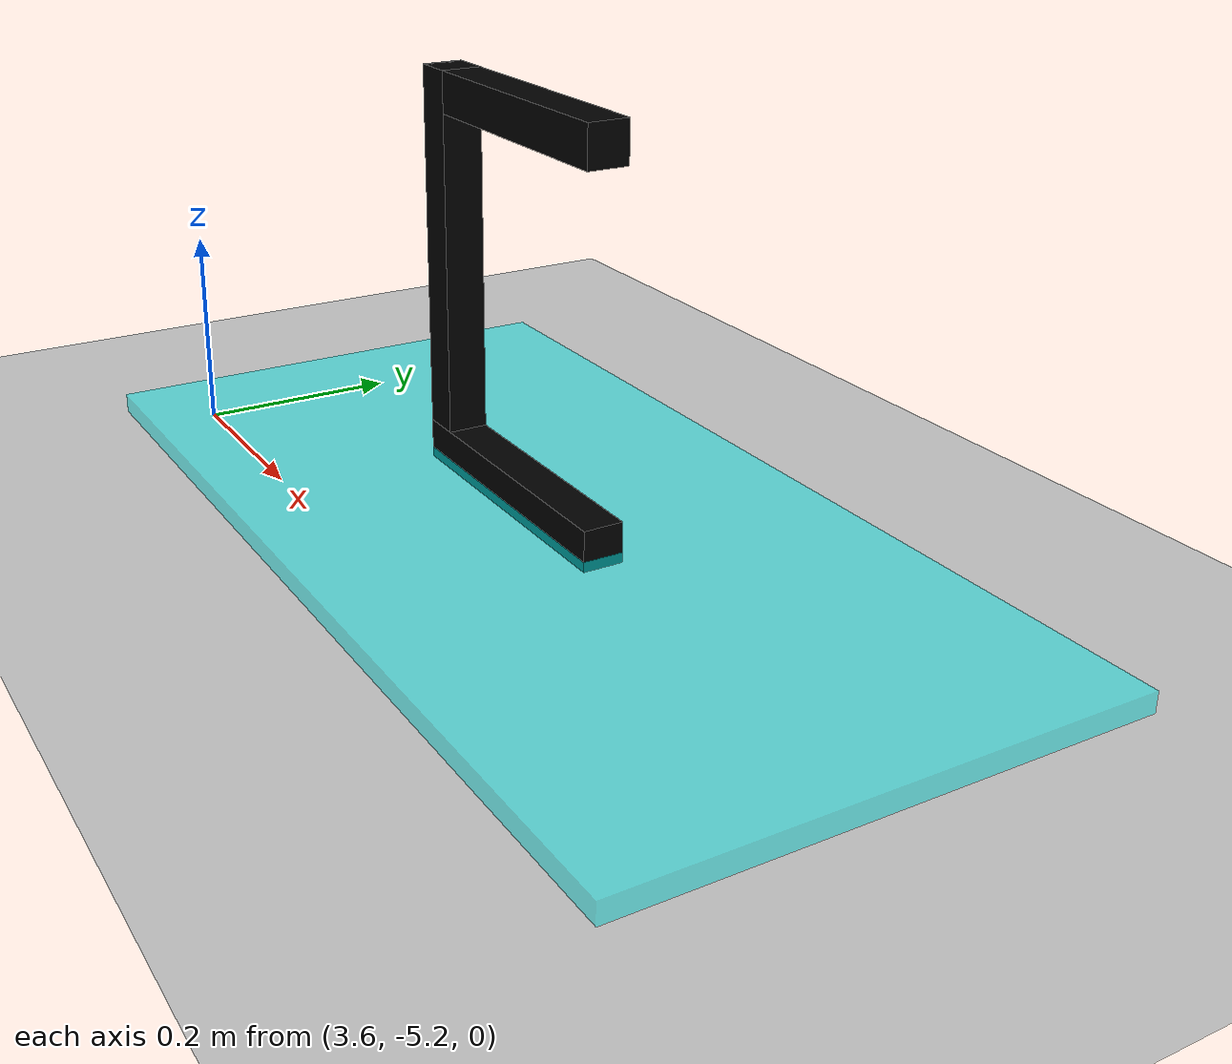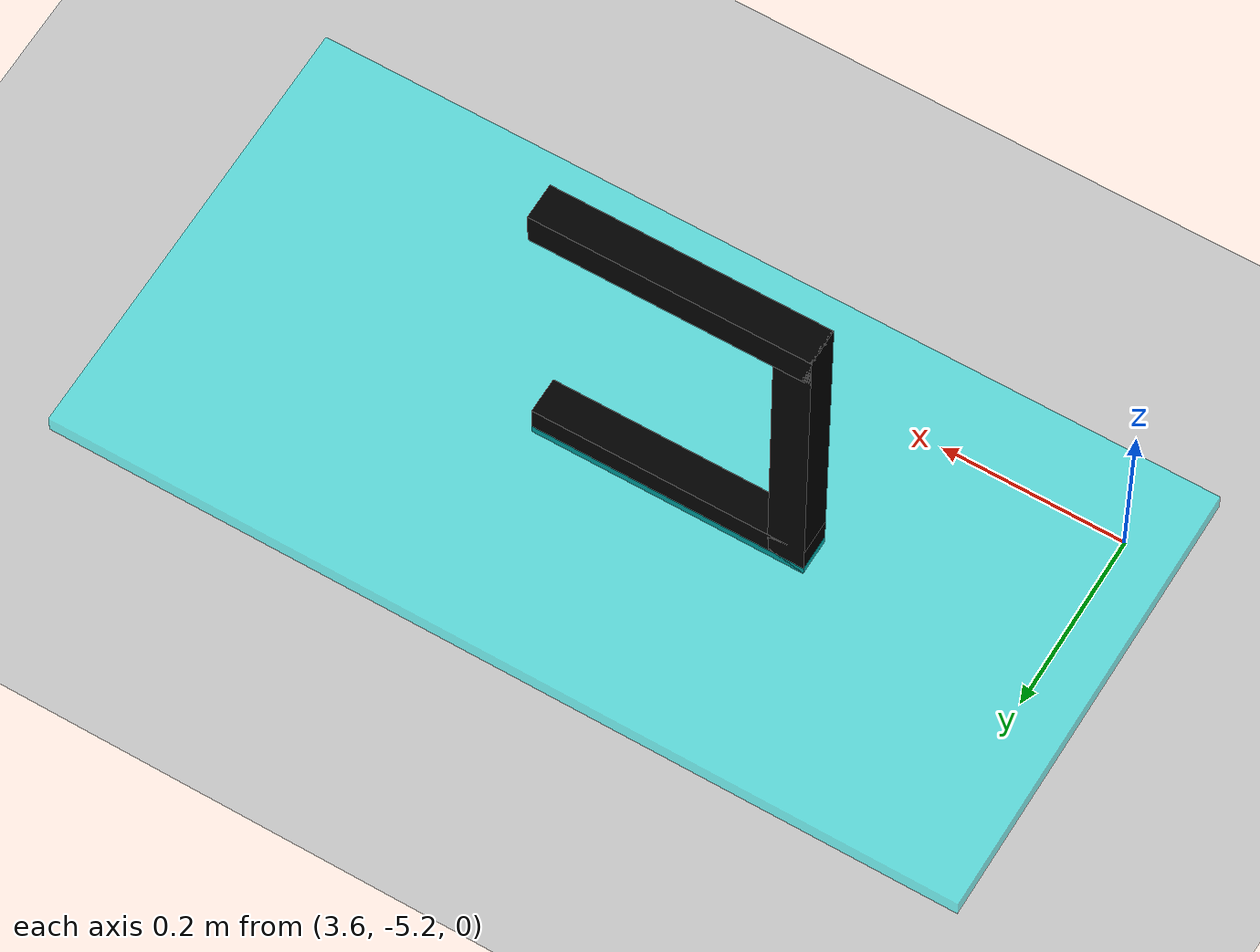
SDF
<sdf version="1.7">
 <world name="default">
  <model name="ground_plane">
   <static>1</static>
   <link name="link">
    <collision name="collision">
     <geometry><plane><normal>0 0 1</normal><size>100 100</size></plane></geometry>
     <surface><friction><ode><mu>100</mu><mu2>50</mu2></ode></friction></surface>
    </collision>
    <visual name="visual">
     <cast_shadows>0</cast_shadows>
     <geometry><plane><normal>0 0 1</normal><size>100 100</size></plane></geometry>
     <material>
      <script><uri>file://media/materials/scripts/gazebo.material</uri><name>Gazebo/Grey</name></script>
     </material>
    </visual>
    <velocity_decay><linear>0</linear><angular>0</angular></velocity_decay>
   </link>
  </model>
  <model name="zone_c">
   <static>1</static>
   <pose>4.04188 -5.02947 0.01 0 -0 0</pose>
   <link name="base">
    <visual name="visual">
     <geometry><box><size>1 0.5 0.02</size></box></geometry>
     <material><ambient>0 1 1 0.5</ambient><diffuse>0 1 1 0.5</diffuse></material>
    </visual>
   </link>
   <link name="letter_C_1">
    <pose>-0.05 0 0.38 0 -0 0</pose>
    <visual name="v">
     <geometry><box><size>0.3 0.04 0.04</size></box></geometry>
     <material><ambient>0 0 0 1</ambient><diffuse>0 0 0 1</diffuse></material>
    </visual>
   </link>
   <link name="letter_C_2">
    <pose>-0.05 0 0.02 0 -0 0</pose>
    <visual name="v">
     <geometry><box><size>0.3 0.04 0.04</size></box></geometry>
     <material><ambient>0 0 0 1</ambient><diffuse>0 0 0 1</diffuse></material>
    </visual>
   </link>
   <link name="letter_C_3">
    <pose>-0.18 0 0.2 0 -0 0</pose>
    <visual name="v">
     <geometry><box><size>0.04 0.04 0.4</size></box></geometry>
     <material><ambient>0 0 0 1</ambient><diffuse>0 0 0 1</diffuse></material>
    </visual>
   </link>
  </model>
 </world>
</sdf>
